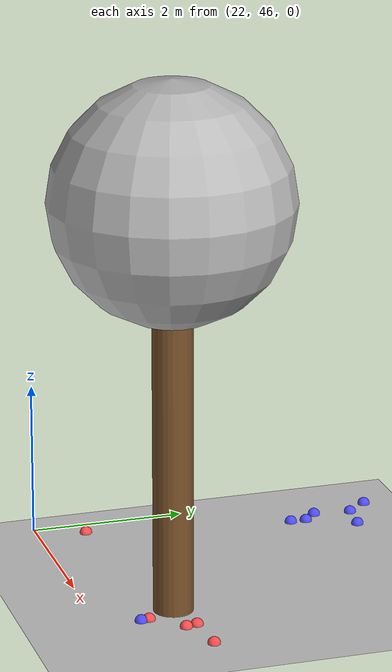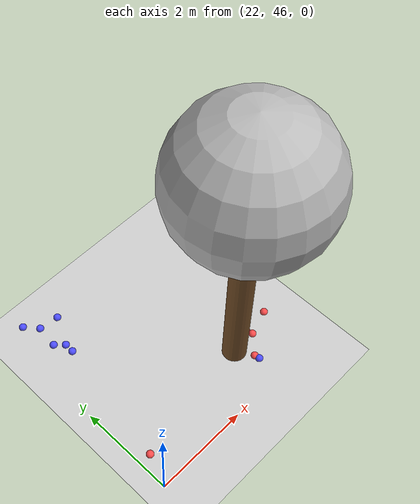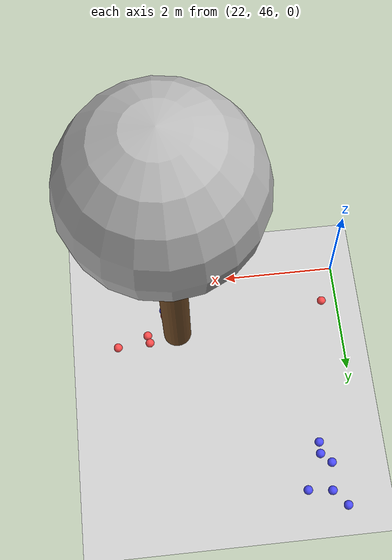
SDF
<sdf version="1.7">
 <world name="default">
  <model name="ground_plane">
   <static>1</static>
   <link name="link">
    <collision name="collision">
     <geometry><plane><normal>0 0 1</normal><size>100 100</size></plane></geometry>
     <surface>
      <contact><collide_bitmask>65535</collide_bitmask></contact>
      <friction><ode><mu>100</mu><mu2>50</mu2></ode></friction>
     </surface>
    </collision>
    <visual name="visual">
     <cast_shadows>0</cast_shadows>
     <geometry><plane><normal>0 0 1</normal><size>100 100</size></plane></geometry>
     <material>
      <script><uri>file://media/materials/scripts/gazebo.material</uri><name>Gazebo/Grey</name></script>
     </material>
    </visual>
   </link>
  </model>
  <model name="tree_simple_3">
   <static>1</static>
   <link name="link">
    <pose>0 0 0.1 0 -0 0</pose>
    <inertial>
     <mass>666</mass>
     <inertia>
      <ixx>0.0861167</ixx>
      <ixy>0</ixy>
      <ixz>0</ixz>
      <iyy>0.0861167</iyy>
      <iyz>0</iyz>
      <izz>0.0861167</izz>
     </inertia>
    </inertial>
    <collision name="collision_trunk">
     <pose>0 0 2 0 -0 0</pose>
     <geometry><cylinder><radius>0.25</radius><length>4</length></cylinder></geometry>
     <surface>
      <contact>
       <poissons_ratio>0.347</poissons_ratio>
       <elastic_modulus>8.8e+09</elastic_modulus>
       <ode><kp>100000</kp><kd>100</kd><max_vel>100</max_vel><min_depth>0.001</min_depth></ode>
      </contact>
      <friction>
       <torsional>
        <coefficient>1</coefficient>
        <use_patch_radius>0</use_patch_radius>
        <surface_radius>0.01</surface_radius>
       </torsional>
      </friction>
     </surface>
    </collision>
    <collision name="collision_treetop">
     <pose>0 0 5.2 0 -0 0</pose>
     <geometry><sphere><radius>1.5</radius></sphere></geometry>
     <surface>
      <contact>
       <poissons_ratio>0.347</poissons_ratio>
       <elastic_modulus>8.8e+09</elastic_modulus>
       <ode><kp>100000</kp><kd>100</kd><max_vel>100</max_vel><min_depth>0.001</min_depth></ode>
      </contact>
      <friction>
       <torsional>
        <coefficient>1</coefficient>
        <use_patch_radius>0</use_patch_radius>
        <surface_radius>0.01</surface_radius>
       </torsional>
      </friction>
     </surface>
    </collision>
    <visual name="trunk">
     <pose>0 0 2 0 -0 0</pose>
     <geometry><cylinder><radius>0.25</radius><length>4</length></cylinder></geometry>
     <material>
      <script>
       <uri>model://tree_simple/scripts</uri>
       <uri>model://tree_simple/materials/textures</uri>
       <name>TreeSimple/Trunk</name>
      </script>
     </material>
    </visual>
    <visual name="treetop">
     <pose>0 0 5.2 0 -0 0</pose>
     <geometry><sphere><radius>1.5</radius></sphere></geometry>
     <material>
      <script>
       <uri>model://tree_simple/scripts</uri>
       <uri>model://tree_simple/materials/textures</uri>
       <name>TreeSimple/Treetop</name>
      </script>
     </material>
    </visual>
   </link>
   <pose>25 47 -0.1 0 -0 0</pose>
  </model>
  <model name="seed_blue_1">
   <link name="link">
    <inertial>
     <mass>1</mass>
     <inertia><ixx>0.1</ixx><ixy>0</ixy><ixz>0</ixz><iyy>0.1</iyy><iyz>0</iyz><izz>0.1</izz></inertia>
    </inertial>
    <visual name="visual">
     <geometry><sphere><radius>0.08</radius></sphere></geometry>
     <material>
      <script><name>Gazebo/Grey</name><uri>file://media/materials/scripts/gazebo.material</uri></script>
      <shader type="pixel"><normal_map>__default__</normal_map></shader>
      <ambient>0.3 0.3 1 1</ambient>
      <diffuse>0.7 0.7 0.7 1</diffuse>
      <specular>0.01 0.01 0.01 1</specular>
      <emissive>0 0 0 1</emissive>
     </material>
    </visual>
    <collision name="collision">
     <geometry><sphere><radius>0.0005</radius></sphere></geometry>
     <surface>
      <friction>
       <ode><mu>1</mu><mu2>1</mu2><fdir1>0 0 0</fdir1><slip1>0</slip1><slip2>0</slip2></ode>
       <torsional>
        <coefficient>1</coefficient>
        <patch_radius>0</patch_radius>
        <surface_radius>0</surface_radius>
        <use_patch_radius>1</use_patch_radius>
        <ode><slip>0</slip></ode>
       </torsional>
      </friction>
      <bounce><restitution_coefficient>0</restitution_coefficient><threshold>1e+06</threshold></bounce>
      <contact>
       <collide_without_contact>0</collide_without_contact>
       <collide_without_contact_bitmask>1</collide_without_contact_bitmask>
       <collide_bitmask>1</collide_bitmask>
       <ode>
        <soft_cfm>0</soft_cfm>
        <soft_erp>0.2</soft_erp>
        <kp>1e+13</kp>
        <kd>1</kd>
        <max_vel>0.01</max_vel>
        <min_depth>0</min_depth>
       </ode>
       <bullet>
        <split_impulse>1</split_impulse>
        <split_impulse_penetration_threshold>-0.01</split_impulse_penetration_threshold>
        <soft_cfm>0</soft_cfm>
        <soft_erp>0.2</soft_erp>
        <kp>1e+13</kp>
        <kd>1</kd>
       </bullet>
      </contact>
     </surface>
    </collision>
   </link>
   <static>0</static>
   <pose>22.3676 50.458 0.0005 0 -0 0</pose>
  </model>
  <model name="seed_blue_3">
   <link name="link">
    <inertial>
     <mass>1</mass>
     <inertia><ixx>0.1</ixx><ixy>0</ixy><ixz>0</ixz><iyy>0.1</iyy><iyz>0</iyz><izz>0.1</izz></inertia>
    </inertial>
    <visual name="visual">
     <geometry><sphere><radius>0.08</radius></sphere></geometry>
     <material>
      <script><name>Gazebo/Grey</name><uri>file://media/materials/scripts/gazebo.material</uri></script>
      <shader type="pixel"><normal_map>__default__</normal_map></shader>
      <ambient>0.3 0.3 1 1</ambient>
      <diffuse>0.7 0.7 0.7 1</diffuse>
      <specular>0.01 0.01 0.01 1</specular>
      <emissive>0 0 0 1</emissive>
     </material>
    </visual>
    <collision name="collision">
     <geometry><sphere><radius>0.0005</radius></sphere></geometry>
     <surface>
      <friction>
       <ode><mu>1</mu><mu2>1</mu2><fdir1>0 0 0</fdir1><slip1>0</slip1><slip2>0</slip2></ode>
       <torsional>
        <coefficient>1</coefficient>
        <patch_radius>0</patch_radius>
        <surface_radius>0</surface_radius>
        <use_patch_radius>1</use_patch_radius>
        <ode><slip>0</slip></ode>
       </torsional>
      </friction>
      <bounce><restitution_coefficient>0</restitution_coefficient><threshold>1e+06</threshold></bounce>
      <contact>
       <collide_without_contact>0</collide_without_contact>
       <collide_without_contact_bitmask>1</collide_without_contact_bitmask>
       <collide_bitmask>1</collide_bitmask>
       <ode>
        <soft_cfm>0</soft_cfm>
        <soft_erp>0.2</soft_erp>
        <kp>1e+13</kp>
        <kd>1</kd>
        <max_vel>0.01</max_vel>
        <min_depth>0</min_depth>
       </ode>
       <bullet>
        <split_impulse>1</split_impulse>
        <split_impulse_penetration_threshold>-0.01</split_impulse_penetration_threshold>
        <soft_cfm>0</soft_cfm>
        <soft_erp>0.2</soft_erp>
        <kp>1e+13</kp>
        <kd>1</kd>
       </bullet>
      </contact>
     </surface>
    </collision>
   </link>
   <static>0</static>
   <pose>22.5353 49.6945 0.0005 0 -0 0</pose>
  </model>
  <model name="seed_blue_4">
   <link name="link">
    <inertial>
     <mass>1</mass>
     <inertia><ixx>0.1</ixx><ixy>0</ixy><ixz>0</ixz><iyy>0.1</iyy><iyz>0</iyz><izz>0.1</izz></inertia>
    </inertial>
    <visual name="visual">
     <geometry><sphere><radius>0.08</radius></sphere></geometry>
     <material>
      <script><name>Gazebo/Grey</name><uri>file://media/materials/scripts/gazebo.material</uri></script>
      <shader type="pixel"><normal_map>__default__</normal_map></shader>
      <ambient>0.3 0.3 1 1</ambient>
      <diffuse>0.7 0.7 0.7 1</diffuse>
      <specular>0.01 0.01 0.01 1</specular>
      <emissive>0 0 0 1</emissive>
     </material>
    </visual>
    <collision name="collision">
     <geometry><sphere><radius>0.0005</radius></sphere></geometry>
     <surface>
      <friction>
       <ode><mu>1</mu><mu2>1</mu2><fdir1>0 0 0</fdir1><slip1>0</slip1><slip2>0</slip2></ode>
       <torsional>
        <coefficient>1</coefficient>
        <patch_radius>0</patch_radius>
        <surface_radius>0</surface_radius>
        <use_patch_radius>1</use_patch_radius>
        <ode><slip>0</slip></ode>
       </torsional>
      </friction>
      <bounce><restitution_coefficient>0</restitution_coefficient><threshold>1e+06</threshold></bounce>
      <contact>
       <collide_without_contact>0</collide_without_contact>
       <collide_without_contact_bitmask>1</collide_without_contact_bitmask>
       <collide_bitmask>1</collide_bitmask>
       <ode>
        <soft_cfm>0</soft_cfm>
        <soft_erp>0.2</soft_erp>
        <kp>1e+13</kp>
        <kd>1</kd>
        <max_vel>0.01</max_vel>
        <min_depth>0</min_depth>
       </ode>
       <bullet>
        <split_impulse>1</split_impulse>
        <split_impulse_penetration_threshold>-0.01</split_impulse_penetration_threshold>
        <soft_cfm>0</soft_cfm>
        <soft_erp>0.2</soft_erp>
        <kp>1e+13</kp>
        <kd>1</kd>
       </bullet>
      </contact>
     </surface>
    </collision>
   </link>
   <static>0</static>
   <pose>23.0161 50.133 0.0005 0 -0 0</pose>
  </model>
  <model name="seed_blue_5">
   <link name="link">
    <inertial>
     <mass>1</mass>
     <inertia><ixx>0.1</ixx><ixy>0</ixy><ixz>0</ixz><iyy>0.1</iyy><iyz>0</iyz><izz>0.1</izz></inertia>
    </inertial>
    <visual name="visual">
     <geometry><sphere><radius>0.08</radius></sphere></geometry>
     <material>
      <script><name>Gazebo/Grey</name><uri>file://media/materials/scripts/gazebo.material</uri></script>
      <shader type="pixel"><normal_map>__default__</normal_map></shader>
      <ambient>0.3 0.3 1 1</ambient>
      <diffuse>0.7 0.7 0.7 1</diffuse>
      <specular>0.01 0.01 0.01 1</specular>
      <emissive>0 0 0 1</emissive>
     </material>
    </visual>
    <collision name="collision">
     <geometry><sphere><radius>0.0005</radius></sphere></geometry>
     <surface>
      <friction>
       <ode><mu>1</mu><mu2>1</mu2><fdir1>0 0 0</fdir1><slip1>0</slip1><slip2>0</slip2></ode>
       <torsional>
        <coefficient>1</coefficient>
        <patch_radius>0</patch_radius>
        <surface_radius>0</surface_radius>
        <use_patch_radius>1</use_patch_radius>
        <ode><slip>0</slip></ode>
       </torsional>
      </friction>
      <bounce><restitution_coefficient>0</restitution_coefficient><threshold>1e+06</threshold></bounce>
      <contact>
       <collide_without_contact>0</collide_without_contact>
       <collide_without_contact_bitmask>1</collide_without_contact_bitmask>
       <collide_bitmask>1</collide_bitmask>
       <ode>
        <soft_cfm>0</soft_cfm>
        <soft_erp>0.2</soft_erp>
        <kp>1e+13</kp>
        <kd>1</kd>
        <max_vel>0.01</max_vel>
        <min_depth>0</min_depth>
       </ode>
       <bullet>
        <split_impulse>1</split_impulse>
        <split_impulse_penetration_threshold>-0.01</split_impulse_penetration_threshold>
        <soft_cfm>0</soft_cfm>
        <soft_erp>0.2</soft_erp>
        <kp>1e+13</kp>
        <kd>1</kd>
       </bullet>
      </contact>
     </surface>
    </collision>
   </link>
   <static>0</static>
   <pose>22.5956 50.1819 0.0005 0 -0 0</pose>
  </model>
  <model name="seed_blue_6">
   <link name="link">
    <inertial>
     <mass>1</mass>
     <inertia><ixx>0.1</ixx><ixy>0</ixy><ixz>0</ixz><iyy>0.1</iyy><iyz>0</iyz><izz>0.1</izz></inertia>
    </inertial>
    <visual name="visual">
     <geometry><sphere><radius>0.08</radius></sphere></geometry>
     <material>
      <script><name>Gazebo/Grey</name><uri>file://media/materials/scripts/gazebo.material</uri></script>
      <shader type="pixel"><normal_map>__default__</normal_map></shader>
      <ambient>0.3 0.3 1 1</ambient>
      <diffuse>0.7 0.7 0.7 1</diffuse>
      <specular>0.01 0.01 0.01 1</specular>
      <emissive>0 0 0 1</emissive>
     </material>
    </visual>
    <collision name="collision">
     <geometry><sphere><radius>0.0005</radius></sphere></geometry>
     <surface>
      <friction>
       <ode><mu>1</mu><mu2>1</mu2><fdir1>0 0 0</fdir1><slip1>0</slip1><slip2>0</slip2></ode>
       <torsional>
        <coefficient>1</coefficient>
        <patch_radius>0</patch_radius>
        <surface_radius>0</surface_radius>
        <use_patch_radius>1</use_patch_radius>
        <ode><slip>0</slip></ode>
       </torsional>
      </friction>
      <bounce><restitution_coefficient>0</restitution_coefficient><threshold>1e+06</threshold></bounce>
      <contact>
       <collide_without_contact>0</collide_without_contact>
       <collide_without_contact_bitmask>1</collide_without_contact_bitmask>
       <collide_bitmask>1</collide_bitmask>
       <ode>
        <soft_cfm>0</soft_cfm>
        <soft_erp>0.2</soft_erp>
        <kp>1e+13</kp>
        <kd>1</kd>
        <max_vel>0.01</max_vel>
        <min_depth>0</min_depth>
       </ode>
       <bullet>
        <split_impulse>1</split_impulse>
        <split_impulse_penetration_threshold>-0.01</split_impulse_penetration_threshold>
        <soft_cfm>0</soft_cfm>
        <soft_erp>0.2</soft_erp>
        <kp>1e+13</kp>
        <kd>1</kd>
       </bullet>
      </contact>
     </surface>
    </collision>
   </link>
   <static>0</static>
   <pose>22.7028 49.3138 0.0005 0 -0 0</pose>
  </model>
  <model name="seed_blue_7">
   <link name="link">
    <inertial>
     <mass>1</mass>
     <inertia><ixx>0.1</ixx><ixy>0</ixy><ixz>0</ixz><iyy>0.1</iyy><iyz>0</iyz><izz>0.1</izz></inertia>
    </inertial>
    <visual name="visual">
     <geometry><sphere><radius>0.08</radius></sphere></geometry>
     <material>
      <script><name>Gazebo/Grey</name><uri>file://media/materials/scripts/gazebo.material</uri></script>
      <shader type="pixel"><normal_map>__default__</normal_map></shader>
      <ambient>0.3 0.3 1 1</ambient>
      <diffuse>0.7 0.7 0.7 1</diffuse>
      <specular>0.01 0.01 0.01 1</specular>
      <emissive>0 0 0 1</emissive>
     </material>
    </visual>
    <collision name="collision">
     <geometry><sphere><radius>0.0005</radius></sphere></geometry>
     <surface>
      <friction>
       <ode><mu>1</mu><mu2>1</mu2><fdir1>0 0 0</fdir1><slip1>0</slip1><slip2>0</slip2></ode>
       <torsional>
        <coefficient>1</coefficient>
        <patch_radius>0</patch_radius>
        <surface_radius>0</surface_radius>
        <use_patch_radius>1</use_patch_radius>
        <ode><slip>0</slip></ode>
       </torsional>
      </friction>
      <bounce><restitution_coefficient>0</restitution_coefficient><threshold>1e+06</threshold></bounce>
      <contact>
       <collide_without_contact>0</collide_without_contact>
       <collide_without_contact_bitmask>1</collide_without_contact_bitmask>
       <collide_bitmask>1</collide_bitmask>
       <ode>
        <soft_cfm>0</soft_cfm>
        <soft_erp>0.2</soft_erp>
        <kp>1e+13</kp>
        <kd>1</kd>
        <max_vel>0.01</max_vel>
        <min_depth>0</min_depth>
       </ode>
       <bullet>
        <split_impulse>1</split_impulse>
        <split_impulse_penetration_threshold>-0.01</split_impulse_penetration_threshold>
        <soft_cfm>0</soft_cfm>
        <soft_erp>0.2</soft_erp>
        <kp>1e+13</kp>
        <kd>1</kd>
       </bullet>
      </contact>
     </surface>
    </collision>
   </link>
   <static>0</static>
   <pose>22.7106 49.5198 0.0005 0 -0 0</pose>
  </model>
  <model name="seed_red_7">
   <link name="link">
    <inertial>
     <mass>1</mass>
     <inertia><ixx>0.1</ixx><ixy>0</ixy><ixz>0</ixz><iyy>0.1</iyy><iyz>0</iyz><izz>0.1</izz></inertia>
    </inertial>
    <visual name="visual">
     <geometry><sphere><radius>0.08</radius></sphere></geometry>
     <material>
      <script><name>Gazebo/Grey</name><uri>file://media/materials/scripts/gazebo.material</uri></script>
      <shader type="pixel"><normal_map>__default__</normal_map></shader>
      <ambient>1 0.3 0.3 1</ambient>
      <diffuse>0.7 0.7 0.7 1</diffuse>
      <specular>0.01 0.01 0.01 1</specular>
      <emissive>0 0 0 1</emissive>
     </material>
    </visual>
    <collision name="collision">
     <geometry><sphere><radius>0.0005</radius></sphere></geometry>
     <surface>
      <friction>
       <ode><mu>1</mu><mu2>1</mu2><fdir1>0 0 0</fdir1><slip1>0</slip1><slip2>0</slip2></ode>
       <torsional>
        <coefficient>1</coefficient>
        <patch_radius>0</patch_radius>
        <surface_radius>0</surface_radius>
        <use_patch_radius>1</use_patch_radius>
        <ode><slip>0</slip></ode>
       </torsional>
      </friction>
      <bounce><restitution_coefficient>0</restitution_coefficient><threshold>1e+06</threshold></bounce>
      <contact>
       <collide_without_contact>0</collide_without_contact>
       <collide_without_contact_bitmask>1</collide_without_contact_bitmask>
       <collide_bitmask>1</collide_bitmask>
       <ode>
        <soft_cfm>0</soft_cfm>
        <soft_erp>0.2</soft_erp>
        <kp>1e+13</kp>
        <kd>1</kd>
        <max_vel>0.01</max_vel>
        <min_depth>0</min_depth>
       </ode>
       <bullet>
        <split_impulse>1</split_impulse>
        <split_impulse_penetration_threshold>-0.01</split_impulse_penetration_threshold>
        <soft_cfm>0</soft_cfm>
        <soft_erp>0.2</soft_erp>
        <kp>1e+13</kp>
        <kd>1</kd>
       </bullet>
      </contact>
     </surface>
    </collision>
   </link>
   <static>0</static>
   <pose>26.1078 47.1759 0.0005 0 -0 0</pose>
  </model>
  <model name="seed_red_8">
   <link name="link">
    <inertial>
     <mass>1</mass>
     <inertia><ixx>0.1</ixx><ixy>0</ixy><ixz>0</ixz><iyy>0.1</iyy><iyz>0</iyz><izz>0.1</izz></inertia>
    </inertial>
    <visual name="visual">
     <geometry><sphere><radius>0.08</radius></sphere></geometry>
     <material>
      <script><name>Gazebo/Grey</name><uri>file://media/materials/scripts/gazebo.material</uri></script>
      <shader type="pixel"><normal_map>__default__</normal_map></shader>
      <ambient>1 0.3 0.3 1</ambient>
      <diffuse>0.7 0.7 0.7 1</diffuse>
      <specular>0.01 0.01 0.01 1</specular>
      <emissive>0 0 0 1</emissive>
     </material>
    </visual>
    <collision name="collision">
     <geometry><sphere><radius>0.0005</radius></sphere></geometry>
     <surface>
      <friction>
       <ode><mu>1</mu><mu2>1</mu2><fdir1>0 0 0</fdir1><slip1>0</slip1><slip2>0</slip2></ode>
       <torsional>
        <coefficient>1</coefficient>
        <patch_radius>0</patch_radius>
        <surface_radius>0</surface_radius>
        <use_patch_radius>1</use_patch_radius>
        <ode><slip>0</slip></ode>
       </torsional>
      </friction>
      <bounce><restitution_coefficient>0</restitution_coefficient><threshold>1e+06</threshold></bounce>
      <contact>
       <collide_without_contact>0</collide_without_contact>
       <collide_without_contact_bitmask>1</collide_without_contact_bitmask>
       <collide_bitmask>1</collide_bitmask>
       <ode>
        <soft_cfm>0</soft_cfm>
        <soft_erp>0.2</soft_erp>
        <kp>1e+13</kp>
        <kd>1</kd>
        <max_vel>0.01</max_vel>
        <min_depth>0</min_depth>
       </ode>
       <bullet>
        <split_impulse>1</split_impulse>
        <split_impulse_penetration_threshold>-0.01</split_impulse_penetration_threshold>
        <soft_cfm>0</soft_cfm>
        <soft_erp>0.2</soft_erp>
        <kp>1e+13</kp>
        <kd>1</kd>
       </bullet>
      </contact>
     </surface>
    </collision>
   </link>
   <static>0</static>
   <pose>25.2034 46.6282 0.0005 0 -0 0</pose>
  </model>
  <model name="seed_red_9">
   <link name="link">
    <inertial>
     <mass>1</mass>
     <inertia><ixx>0.1</ixx><ixy>0</ixy><ixz>0</ixz><iyy>0.1</iyy><iyz>0</iyz><izz>0.1</izz></inertia>
    </inertial>
    <visual name="visual">
     <geometry><sphere><radius>0.08</radius></sphere></geometry>
     <material>
      <script><name>Gazebo/Grey</name><uri>file://media/materials/scripts/gazebo.material</uri></script>
      <shader type="pixel"><normal_map>__default__</normal_map></shader>
      <ambient>1 0.3 0.3 1</ambient>
      <diffuse>0.7 0.7 0.7 1</diffuse>
      <specular>0.01 0.01 0.01 1</specular>
      <emissive>0 0 0 1</emissive>
     </material>
    </visual>
    <collision name="collision">
     <geometry><sphere><radius>0.0005</radius></sphere></geometry>
     <surface>
      <friction>
       <ode><mu>1</mu><mu2>1</mu2><fdir1>0 0 0</fdir1><slip1>0</slip1><slip2>0</slip2></ode>
       <torsional>
        <coefficient>1</coefficient>
        <patch_radius>0</patch_radius>
        <surface_radius>0</surface_radius>
        <use_patch_radius>1</use_patch_radius>
        <ode><slip>0</slip></ode>
       </torsional>
      </friction>
      <bounce><restitution_coefficient>0</restitution_coefficient><threshold>1e+06</threshold></bounce>
      <contact>
       <collide_without_contact>0</collide_without_contact>
       <collide_without_contact_bitmask>1</collide_without_contact_bitmask>
       <collide_bitmask>1</collide_bitmask>
       <ode>
        <soft_cfm>0</soft_cfm>
        <soft_erp>0.2</soft_erp>
        <kp>1e+13</kp>
        <kd>1</kd>
        <max_vel>0.01</max_vel>
        <min_depth>0</min_depth>
       </ode>
       <bullet>
        <split_impulse>1</split_impulse>
        <split_impulse_penetration_threshold>-0.01</split_impulse_penetration_threshold>
        <soft_cfm>0</soft_cfm>
        <soft_erp>0.2</soft_erp>
        <kp>1e+13</kp>
        <kd>1</kd>
       </bullet>
      </contact>
     </surface>
    </collision>
   </link>
   <static>0</static>
   <pose>25.52 47.1434 0.0005 0 -0 0</pose>
  </model>
  <model name="seed_red_10">
   <link name="link">
    <inertial>
     <mass>1</mass>
     <inertia><ixx>0.1</ixx><ixy>0</ixy><ixz>0</ixz><iyy>0.1</iyy><iyz>0</iyz><izz>0.1</izz></inertia>
    </inertial>
    <visual name="visual">
     <geometry><sphere><radius>0.08</radius></sphere></geometry>
     <material>
      <script><name>Gazebo/Grey</name><uri>file://media/materials/scripts/gazebo.material</uri></script>
      <shader type="pixel"><normal_map>__default__</normal_map></shader>
      <ambient>1 0.3 0.3 1</ambient>
      <diffuse>0.7 0.7 0.7 1</diffuse>
      <specular>0.01 0.01 0.01 1</specular>
      <emissive>0 0 0 1</emissive>
     </material>
    </visual>
    <collision name="collision">
     <geometry><sphere><radius>0.0005</radius></sphere></geometry>
     <surface>
      <friction>
       <ode><mu>1</mu><mu2>1</mu2><fdir1>0 0 0</fdir1><slip1>0</slip1><slip2>0</slip2></ode>
       <torsional>
        <coefficient>1</coefficient>
        <patch_radius>0</patch_radius>
        <surface_radius>0</surface_radius>
        <use_patch_radius>1</use_patch_radius>
        <ode><slip>0</slip></ode>
       </torsional>
      </friction>
      <bounce><restitution_coefficient>0</restitution_coefficient><threshold>1e+06</threshold></bounce>
      <contact>
       <collide_without_contact>0</collide_without_contact>
       <collide_without_contact_bitmask>1</collide_without_contact_bitmask>
       <collide_bitmask>1</collide_bitmask>
       <ode>
        <soft_cfm>0</soft_cfm>
        <soft_erp>0.2</soft_erp>
        <kp>1e+13</kp>
        <kd>1</kd>
        <max_vel>0.01</max_vel>
        <min_depth>0</min_depth>
       </ode>
       <bullet>
        <split_impulse>1</split_impulse>
        <split_impulse_penetration_threshold>-0.01</split_impulse_penetration_threshold>
        <soft_cfm>0</soft_cfm>
        <soft_erp>0.2</soft_erp>
        <kp>1e+13</kp>
        <kd>1</kd>
       </bullet>
      </contact>
     </surface>
    </collision>
   </link>
   <static>0</static>
   <pose>25.5511 46.9983 0.0005 0 -0 0</pose>
  </model>
  <model name="seed_red_27">
   <link name="link">
    <inertial>
     <mass>1</mass>
     <inertia><ixx>0.1</ixx><ixy>0</ixy><ixz>0</ixz><iyy>0.1</iyy><iyz>0</iyz><izz>0.1</izz></inertia>
    </inertial>
    <visual name="visual">
     <geometry><sphere><radius>0.08</radius></sphere></geometry>
     <material>
      <script><name>Gazebo/Grey</name><uri>file://media/materials/scripts/gazebo.material</uri></script>
      <shader type="pixel"><normal_map>__default__</normal_map></shader>
      <ambient>1 0.3 0.3 1</ambient>
      <diffuse>0.7 0.7 0.7 1</diffuse>
      <specular>0.01 0.01 0.01 1</specular>
      <emissive>0 0 0 1</emissive>
     </material>
    </visual>
    <collision name="collision">
     <geometry><sphere><radius>0.0005</radius></sphere></geometry>
     <surface>
      <friction>
       <ode><mu>1</mu><mu2>1</mu2><fdir1>0 0 0</fdir1><slip1>0</slip1><slip2>0</slip2></ode>
       <torsional>
        <coefficient>1</coefficient>
        <patch_radius>0</patch_radius>
        <surface_radius>0</surface_radius>
        <use_patch_radius>1</use_patch_radius>
        <ode><slip>0</slip></ode>
       </torsional>
      </friction>
      <bounce><restitution_coefficient>0</restitution_coefficient><threshold>1e+06</threshold></bounce>
      <contact>
       <collide_without_contact>0</collide_without_contact>
       <collide_without_contact_bitmask>1</collide_without_contact_bitmask>
       <collide_bitmask>1</collide_bitmask>
       <ode>
        <soft_cfm>0</soft_cfm>
        <soft_erp>0.2</soft_erp>
        <kp>1e+13</kp>
        <kd>1</kd>
        <max_vel>0.01</max_vel>
        <min_depth>0</min_depth>
       </ode>
       <bullet>
        <split_impulse>1</split_impulse>
        <split_impulse_penetration_threshold>-0.01</split_impulse_penetration_threshold>
        <soft_cfm>0</soft_cfm>
        <soft_erp>0.2</soft_erp>
        <kp>1e+13</kp>
        <kd>1</kd>
       </bullet>
      </contact>
     </surface>
    </collision>
   </link>
   <static>0</static>
   <pose>22.2606 46.6325 0.0005 0 -0 0</pose>
  </model>
  <model name="seed_blue_18">
   <link name="link">
    <inertial>
     <mass>1</mass>
     <inertia><ixx>0.1</ixx><ixy>0</ixy><ixz>0</ixz><iyy>0.1</iyy><iyz>0</iyz><izz>0.1</izz></inertia>
    </inertial>
    <visual name="visual">
     <geometry><sphere><radius>0.08</radius></sphere></geometry>
     <material>
      <script><name>Gazebo/Grey</name><uri>file://media/materials/scripts/gazebo.material</uri></script>
      <shader type="pixel"><normal_map>__default__</normal_map></shader>
      <ambient>0.3 0.3 1 1</ambient>
      <diffuse>0.7 0.7 0.7 1</diffuse>
      <specular>0.01 0.01 0.01 1</specular>
      <emissive>0 0 0 1</emissive>
     </material>
    </visual>
    <collision name="collision">
     <geometry><sphere><radius>0.0005</radius></sphere></geometry>
     <surface>
      <friction>
       <ode><mu>1</mu><mu2>1</mu2><fdir1>0 0 0</fdir1><slip1>0</slip1><slip2>0</slip2></ode>
       <torsional>
        <coefficient>1</coefficient>
        <patch_radius>0</patch_radius>
        <surface_radius>0</surface_radius>
        <use_patch_radius>1</use_patch_radius>
        <ode><slip>0</slip></ode>
       </torsional>
      </friction>
      <bounce><restitution_coefficient>0</restitution_coefficient><threshold>1e+06</threshold></bounce>
      <contact>
       <collide_without_contact>0</collide_without_contact>
       <collide_without_contact_bitmask>1</collide_without_contact_bitmask>
       <collide_bitmask>1</collide_bitmask>
       <ode>
        <soft_cfm>0</soft_cfm>
        <soft_erp>0.2</soft_erp>
        <kp>1e+13</kp>
        <kd>1</kd>
        <max_vel>0.01</max_vel>
        <min_depth>0</min_depth>
       </ode>
       <bullet>
        <split_impulse>1</split_impulse>
        <split_impulse_penetration_threshold>-0.01</split_impulse_penetration_threshold>
        <soft_cfm>0</soft_cfm>
        <soft_erp>0.2</soft_erp>
        <kp>1e+13</kp>
        <kd>1</kd>
       </bullet>
      </contact>
     </surface>
    </collision>
   </link>
   <static>0</static>
   <pose>25.2187 46.5233 0.0005 0 -0 0</pose>
  </model>
 </world>
</sdf>
